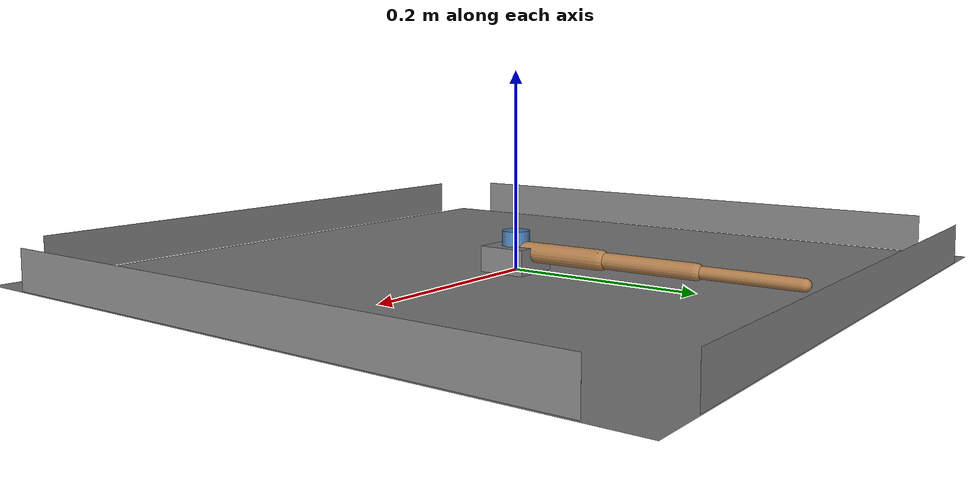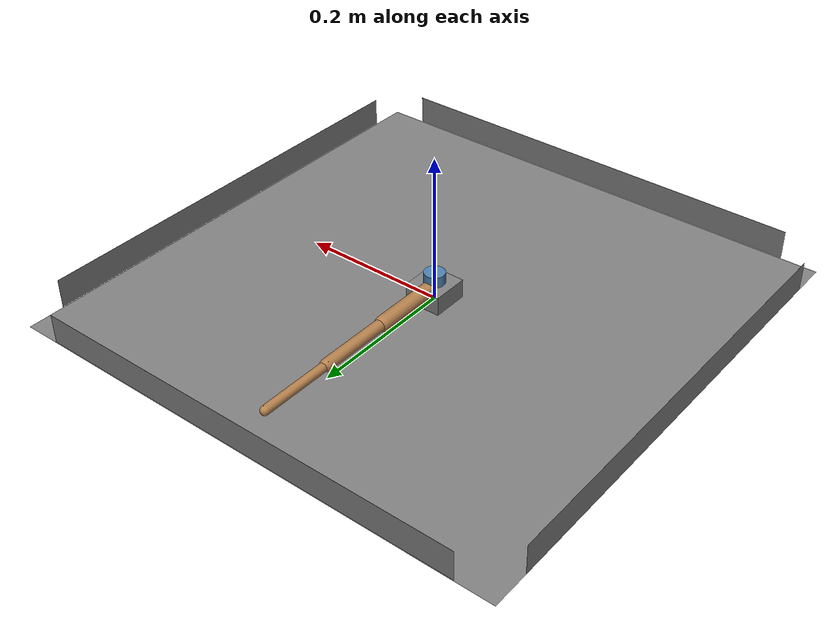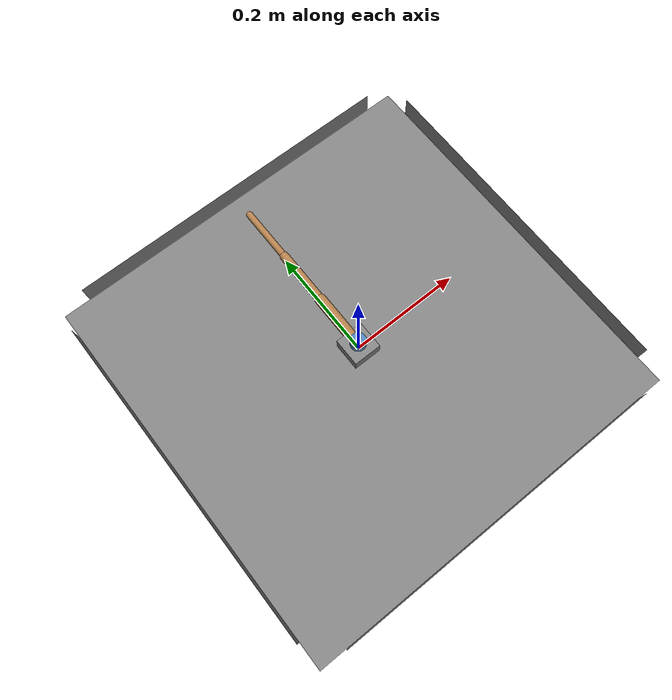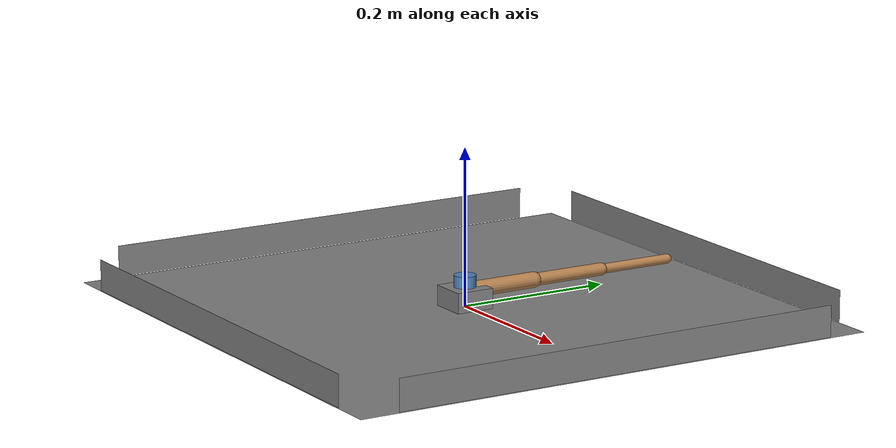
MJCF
<!--NOTE:-->
<!--COMPARE AT 30 and 100 SAMPLES with cov reg as 0.5 with 0.9 importance lambda 0.001-->
<!--0.9 importance and 1 cov reg fro 100 samples-->

<mujoco model="planar point mass">
    <compiler angle="radian" />
    <option timestep="0.01" cone="elliptic" iterations="200" />
    <size njmax="500" nconmax="100" />
    <visual>
        <quality shadowsize="2048" />
        <headlight ambient="0.4 0.4 0.4" diffuse="0.8 0.8 0.8" specular="0.1 0.1 0.1" />
    </visual>
    <default class="main">
        <geom solimp="0 0.9 0.01 0.5 2" solref="0.002 0.6" margin="0.001" friction="0.5 0.5 0.5"/>
        <general ctrllimited="true" ctrlrange="-1 1" />
    </default>
    <asset>
        <texture type="skybox" name="skybox" builtin="gradient" mark="random" rgb1="0.4 0.6 0.8" rgb2="0 0 0" markrgb="1 1 1" width="800" height="4800" />
        <texture type="2d" name="grid" builtin="checker" mark="edge" rgb1="0.1 0.2 0.3" rgb2="0.2 0.3 0.4" markrgb="0.2 0.3 0.4" width="300" height="300" />
        <material name="grid" texture="grid" texuniform="true" reflectance="0.2" />
        <material name="self" rgba="0.7 0.5 0.3 1" />
        <material name="self_default" rgba="0.7 0.5 0.3 1" />
        <material name="self_highlight" rgba="0 0.5 0.3 1" />
        <material name="effector" rgba="0.7 0.4 0.2 1" />
        <material name="effector_default" rgba="0.7 0.4 0.2 1" />
        <material name="effector_highlight" rgba="0 0.5 0.3 1" />
        <material name="decoration" rgba="0.3 0.5 0.7 1" />
        <material name="eye" rgba="0 0.2 1 1" />
        <material name="target" rgba="0.6 0.3 0.3 1" />
        <material name="target_default" rgba="0.6 0.3 0.3 1" />
        <material name="target_highlight" rgba="0.6 0.3 0.3 0.4" />
    </asset>
    <worldbody>
        <geom name="ground" size="0.35 0.35 0.1" pos="-0.0 0 0.0" type="plane" />
        <geom name="wall_x" size="0.02 0.3 0.02" pos="-0.35 0 0.02" quat="0.707107 0 0.707107 0" type="plane" />
        <geom name="wall_y" size="0.3 0.02 0.02" pos="0 -0.35 0.02" quat="0.707107 -0.707107 0 0" type="plane" />
        <geom name="wall_neg_x" size="0.02 0.3 0.02" pos="0.35 0 0.02" quat="0.707107 0 -0.707107 0" type="plane" />
        <geom name="wall_neg_y" size="0.3 0.02 0.02" pos="0 0.35 0.02" quat="0.707107 0.707107 0 0" type="plane" />
        <camera name="fixed" pos="0 0 0.75" />
        <light name="light" pos="0 0 1" dir="0 0 -1" />
        <body name="proximal" pos="0 0 0.02" quat="0.707107 0.707107 0 0">
            <inertial pos="0 0 -0.0291932" mass="0.0591876" diaginertia="7.61519e-05 7.40747e-05 6.21876e-06" />
            <joint name="proximal" pos="0 0 0" axis="0 -1 0" ref="-1.5708" range="-130 -60" damping="0.25" />
            <geom name="proximal_decoration" size="0.014 0.02" quat="0.707107 0.707107 0 0" type="cylinder" material="decoration" />
            <geom name="proximal" size="0.01 0.05" pos="0 0 -0.05" type="capsule" material="self" />
            <body name="distal" pos="0 0 -0.1">
                <inertial pos="0 0 -0.05" mass="0.0217147" diaginertia="2.14541e-05 2.14541e-05 6.9487e-07" />
                <joint name="distal" pos="0 0 0" axis="0 -1 0" range="-45 45" damping="0.3" />
                <geom name="distal" size="0.008 0.05" pos="0 0 -0.05" type="capsule" material="self" />
                <body name="distal2" pos="0 0 -0.1">
                    <inertial pos="0 0 -0.05" mass="0.00522761" diaginertia="4.73273e-06 4.73273e-06 4.18209e-08" />
                    <joint name="distal2" pos="0 0 0" axis="0 -1 0" range="-45 45" damping="0.4" />
                    <geom name="distal2" size="0.006 0.05" pos="0 0 -0.05" type="capsule" material="self"/>
                </body>
            </body>
        </body>
        <body>
            <freejoint/>
            <geom type="box" pos="0 0 0" size="0.025 0.025 0.025"/>
        </body>
    </worldbody>
    <actuator>
        <general name="proximal" joint="proximal" gear="0.35 0 0 0 0 0" />
        <general name="distal" joint="distal" gear="0.5 0 0 0 0 0" />
        <general name="distal2" joint="distal2" gear="0.6 0 0 0 0 0" />
    </actuator>
</mujoco>
